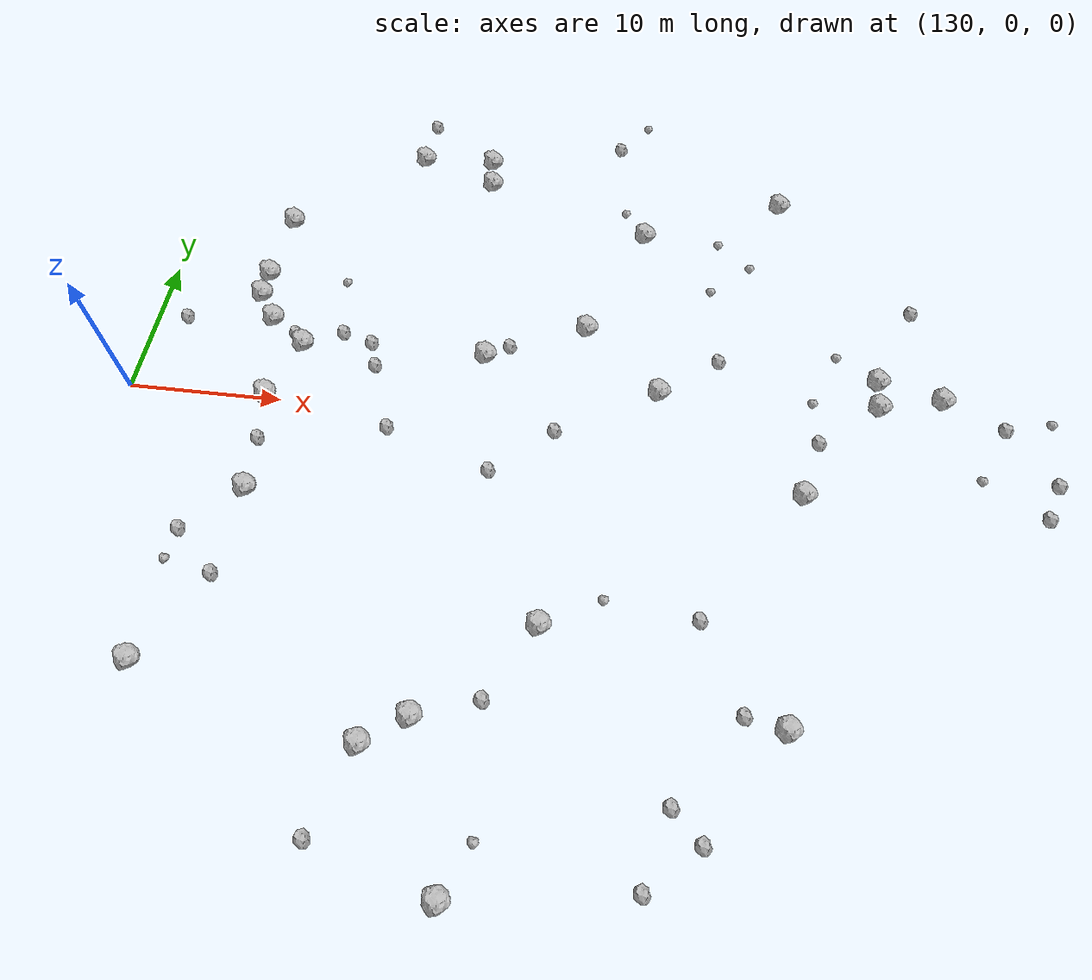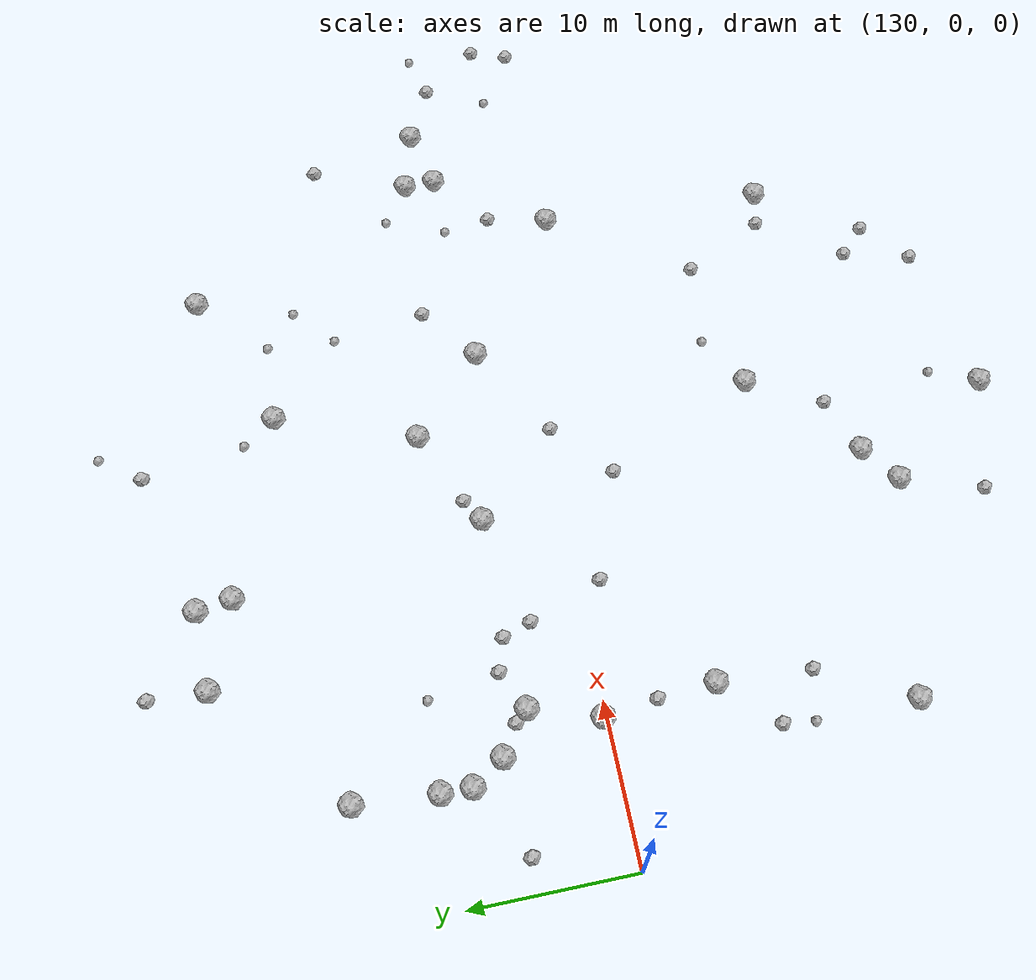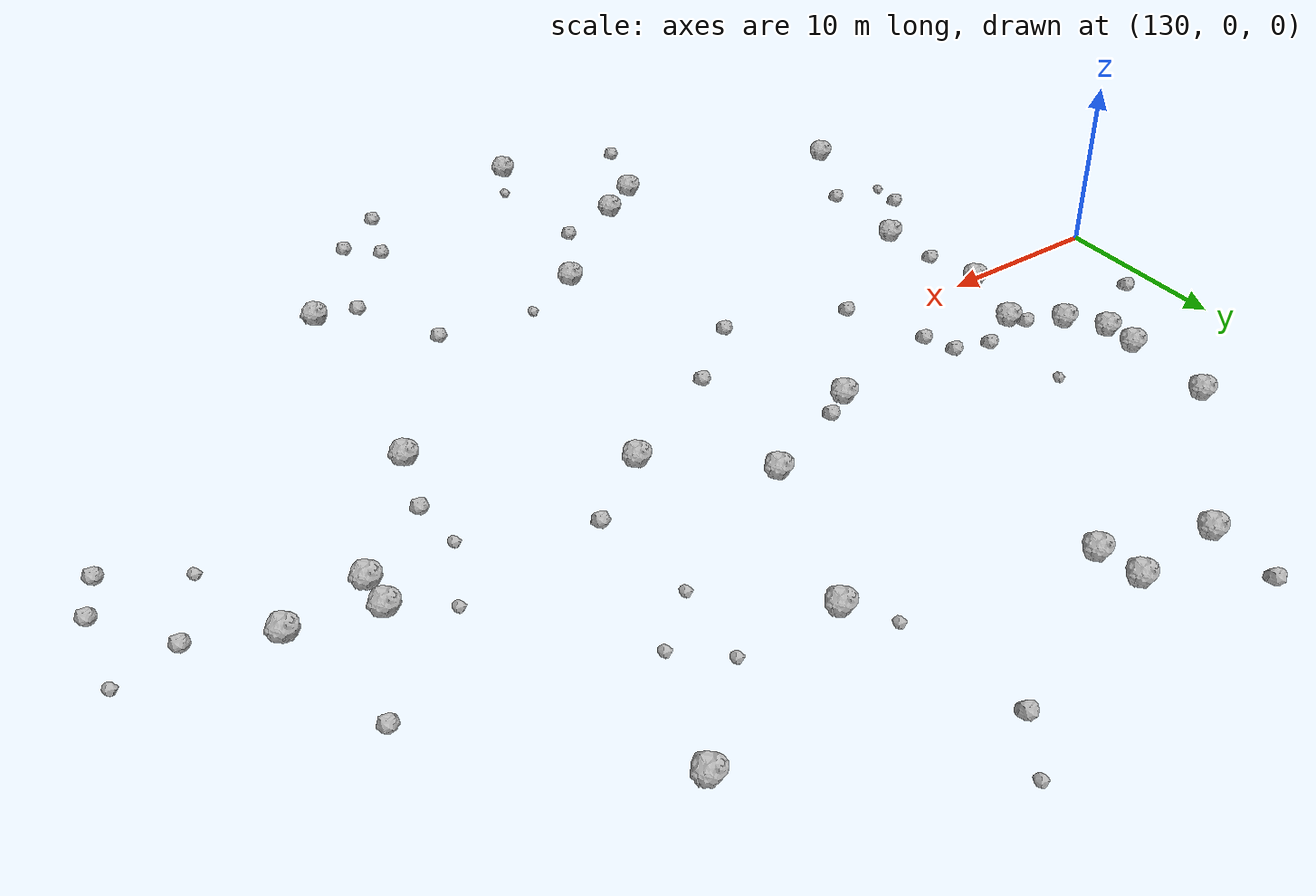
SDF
<sdf version="1.6">
 <world name="default">
  <include><uri>model://sun</uri></include>
  <model name="rock1_4_2">
   <include><uri>model://rock1</uri><pose>150.5274723038872 20.437350035439877 0.5 0 0 0</pose></include>
  </model>
  <model name="rock1_4_3">
   <include><uri>model://rock1</uri><pose>140.36131645578777 4.469589372449917 0.5 0 0 0</pose></include>
  </model>
  <model name="rock1_4_4">
   <include><uri>model://rock1</uri><pose>139.6518706626675 -6.665643065830384 0.5 0 0 0</pose></include>
  </model>
  <model name="rock1_4_5">
   <include><uri>model://rock1</uri><pose>178.15508127511708 3.4804192428005294 0.5 0 0 0</pose></include>
  </model>
  <model name="rock1_4_6">
   <include><uri>model://rock1</uri><pose>137.8422712939796 6.3519110462320185 0.5 0 0 0</pose></include>
  </model>
  <model name="rock1_4_7">
   <include><uri>model://rock1</uri><pose>162.08597495241457 16.534522220171894 0.5 0 0 0</pose></include>
  </model>
  <model name="rock1_4_8">
   <include><uri>model://rock1</uri><pose>178.1244208000973 5.472129240923586 0.5 0 0 0</pose></include>
  </model>
  <model name="rock1_4_9">
   <include><uri>model://rock1</uri><pose>155.59894532190617 -28.329141694190866 0.5 0 0 0</pose></include>
  </model>
  <model name="rock1_4_10">
   <include><uri>model://rock1</uri><pose>136.33646240380727 -18.007617517986567 0.5 0 0 0</pose></include>
  </model>
  <model name="rock1_4_11">
   <include><uri>model://rock1</uri><pose>136.51007037674177 8.331373688480738 0.5 0 0 0</pose></include>
  </model>
  <model name="rock1_4_12">
   <include><uri>model://rock1</uri><pose>138.96627507854873 0.24413685507452598 0.5 0 0 0</pose></include>
  </model>
  <model name="rock1_4_13">
   <include><uri>model://rock1</uri><pose>172.6105301428824 -17.95324265106774 0.5 0 0 0</pose></include>
  </model>
  <model name="rock1_4_14">
   <include><uri>model://rock1</uri><pose>136.54477149683723 10.19446695793593 0.5 0 0 0</pose></include>
  </model>
  <model name="rock1_4_15">
   <include><uri>model://rock1</uri><pose>164.10592079019045 3.1174348060665835 0.5 0 0 0</pose></include>
  </model>
  <model name="rock1_4_16">
   <include><uri>model://rock1</uri><pose>152.54377500261268 4.838356102980065 0.5 0 0 0</pose></include>
  </model>
  <model name="rock1_4_17">
   <include><uri>model://rock1</uri><pose>158.59371126578407 -13.512006370057318 0.5 0 0 0</pose></include>
  </model>
  <model name="rock1_4_18">
   <include><uri>model://rock1</uri><pose>145.14479050472863 22.45883381661644 0.5 0 0 0</pose></include>
  </model>
  <model name="rock1_4_19">
   <include><uri>model://rock1</uri><pose>152.43402641243839 -19.41964189158815 0.5 0 0 0</pose></include>
  </model>
  <model name="rock1_4_20">
   <include><uri>model://rock1</uri><pose>136.9429194228553 15.231622176917895 0.5 0 0 0</pose></include>
  </model>
  <model name="rock1_4_21">
   <include><uri>model://rock1</uri><pose>171.5260271289372 20.490894568111095 0.5 0 0 0</pose></include>
  </model>
  <model name="rock1_4_22">
   <include><uri>model://rock1</uri><pose>150.00539271821597 -21.15728674792055 0.5 0 0 0</pose></include>
  </model>
  <model name="rock1_4_23">
   <include><uri>model://rock1</uri><pose>182.19375822312483 4.4281013741981 0.5 0 0 0</pose></include>
  </model>
  <model name="rock1_4_24">
   <include><uri>model://rock1</uri><pose>158.9262883569539 7.780061618795962 0.5 0 0 0</pose></include>
  </model>
  <model name="rock1_4_25">
   <include><uri>model://rock1</uri><pose>150.1780844501245 22.663457209653586 0.5 0 0 0</pose></include>
  </model>
  <model name="rock1_4_26">
   <include><uri>model://rock1</uri><pose>173.41651251745967 -3.478810127402518 0.5 0 0 0</pose></include>
  </model>
  <model name="rock2_4_0">
   <include><uri>model://rock2</uri><pose>132.053504957046 5.831025680068038 0.3 0 0 0</pose></include>
  </model>
  <model name="rock2_4_1">
   <include><uri>model://rock2</uri><pose>168.4192436407289 -24.317520294469407 0.3 0 0 0</pose></include>
  </model>
  <model name="rock2_4_2">
   <include><uri>model://rock2</uri><pose>145.49181368041596 3.225574135049065 0.3 0 0 0</pose></include>
  </model>
  <model name="rock2_4_3">
   <include><uri>model://rock2</uri><pose>167.58633908123184 -12.243916631042094 0.3 0 0 0</pose></include>
  </model>
  <model name="rock2_4_4">
   <include><uri>model://rock2</uri><pose>139.66993040908392 5.227059403226335 0.3 0 0 0</pose></include>
  </model>
  <model name="rock2_4_5">
   <include><uri>model://rock2</uri><pose>188.79764263796565 -1.0981253830705668 0.3 0 0 0</pose></include>
  </model>
  <model name="rock2_4_6">
   <include><uri>model://rock2</uri><pose>157.79598755652927 -0.536555547104193 0.3 0 0 0</pose></include>
  </model>
  <model name="rock2_4_7">
   <include><uri>model://rock2</uri><pose>147.26284967696722 -1.4200091884856576 0.3 0 0 0</pose></include>
  </model>
  <model name="rock2_4_8">
   <include><uri>model://rock2</uri><pose>154.01735985282886 5.729473148524669 0.3 0 0 0</pose></include>
  </model>
  <model name="rock2_4_9">
   <include><uri>model://rock2</uri><pose>144.87164041936043 5.006652275516416 0.3 0 0 0</pose></include>
  </model>
  <model name="rock2_4_10">
   <include><uri>model://rock2</uri><pose>148.31328494694526 -26.218143157199606 0.3 0 0 0</pose></include>
  </model>
  <model name="rock2_4_11">
   <include><uri>model://rock2</uri><pose>185.9557075086051 2.653208964269197 0.3 0 0 0</pose></include>
  </model>
  <model name="rock2_4_12">
   <include><uri>model://rock2</uri><pose>170.24684937032154 -17.463590491299293 0.3 0 0 0</pose></include>
  </model>
  <model name="rock2_4_13">
   <include><uri>model://rock2</uri><pose>167.7860721066786 6.014714444835548 0.3 0 0 0</pose></include>
  </model>
  <model name="rock2_4_14">
   <include><uri>model://rock2</uri><pose>174.3005899654267 0.3940444277009547 0.3 0 0 0</pose></include>
  </model>
  <model name="rock2_4_15">
   <include><uri>model://rock2</uri><pose>139.41131530728944 -3.1112830759539065 0.3 0 0 0</pose></include>
  </model>
  <model name="rock2_4_16">
   <include><uri>model://rock2</uri><pose>180.47938542023365 11.479390046597544 0.3 0 0 0</pose></include>
  </model>
  <model name="rock2_4_17">
   <include><uri>model://rock2</uri><pose>159.56099570486165 25.146963700353318 0.3 0 0 0</pose></include>
  </model>
  <model name="rock2_4_18">
   <include><uri>model://rock2</uri><pose>142.8352774821812 5.639684374065354 0.3 0 0 0</pose></include>
  </model>
  <model name="rock2_4_19">
   <include><uri>model://rock2</uri><pose>156.11392170309713 -18.129228553308707 0.3 0 0 0</pose></include>
  </model>
  <model name="rock2_4_20">
   <include><uri>model://rock2</uri><pose>145.2954634425862 26.0570740109469 0.3 0 0 0</pose></include>
  </model>
  <model name="rock2_4_21">
   <include><uri>model://rock2</uri><pose>165.5451850857991 -26.88507344677029 0.3 0 0 0</pose></include>
  </model>
  <model name="rock2_4_22">
   <include><uri>model://rock2</uri><pose>136.5009806357562 -9.84251559893455 0.3 0 0 0</pose></include>
  </model>
  <model name="rock2_4_23">
   <include><uri>model://rock2</uri><pose>139.2833197876204 -12.457327349298048 0.3 0 0 0</pose></include>
  </model>
  <model name="rock2_4_24">
   <include><uri>model://rock2</uri><pose>166.67756070931023 -22.632755542797145 0.3 0 0 0</pose></include>
  </model>
  <model name="rock2_4_25">
   <include><uri>model://rock2</uri><pose>187.9640267570408 -3.4796119749972156 0.3 0 0 0</pose></include>
  </model>
  <model name="rock2_4_26">
   <include><uri>model://rock2</uri><pose>154.10965421026356 -3.822238417037404 0.3 0 0 0</pose></include>
  </model>
  <model name="rock3_4_0">
   <include><uri>model://rock3</uri><pose>175.45168673271422 7.196591057229874 0.2 0 0 0</pose></include>
  </model>
  <model name="rock3_4_1">
   <include><uri>model://rock3</uri><pose>141.99655222222128 10.001037152520809 0.2 0 0 0</pose></include>
  </model>
  <model name="rock3_4_2">
   <include><uri>model://rock3</uri><pose>162.02768938989684 -11.61286153555347 0.2 0 0 0</pose></include>
  </model>
  <model name="rock3_4_3">
   <include><uri>model://rock3</uri><pose>184.20249179722296 -1.2299465250079038 0.2 0 0 0</pose></include>
  </model>
  <model name="rock3_4_4">
   <include><uri>model://rock3</uri><pose>161.4024915207768 27.696219906912134 0.2 0 0 0</pose></include>
  </model>
  <model name="rock3_4_5">
   <include><uri>model://rock3</uri><pose>188.91618196382018 3.4003936440752796 0.2 0 0 0</pose></include>
  </model>
  <model name="rock3_4_6">
   <include><uri>model://rock3</uri><pose>156.86603397785726 -25.4232895972899 0.2 0 0 0</pose></include>
  </model>
  <model name="rock3_4_7">
   <include><uri>model://rock3</uri><pose>136.23738536715211 -11.830512154304941 0.2 0 0 0</pose></include>
  </model>
  <model name="rock3_4_8">
   <include><uri>model://rock3</uri><pose>160.53274584000619 18.622205537517743 0.2 0 0 0</pose></include>
  </model>
  <model name="rock3_4_9">
   <include><uri>model://rock3</uri><pose>173.90978596857212 3.3825101215289735 0.2 0 0 0</pose></include>
  </model>
  <model name="rock3_4_10">
   <include><uri>model://rock3</uri><pose>167.28727752847638 16.30129074787942 0.2 0 0 0</pose></include>
  </model>
  <model name="rock3_4_11">
   <include><uri>model://rock3</uri><pose>169.55186115592267 14.341994635741344 0.2 0 0 0</pose></include>
  </model>
  <model name="rock3_4_12">
   <include><uri>model://rock3</uri><pose>166.9648309758784 11.95159779281098 0.2 0 0 0</pose></include>
  </model>
 </world>
</sdf>
